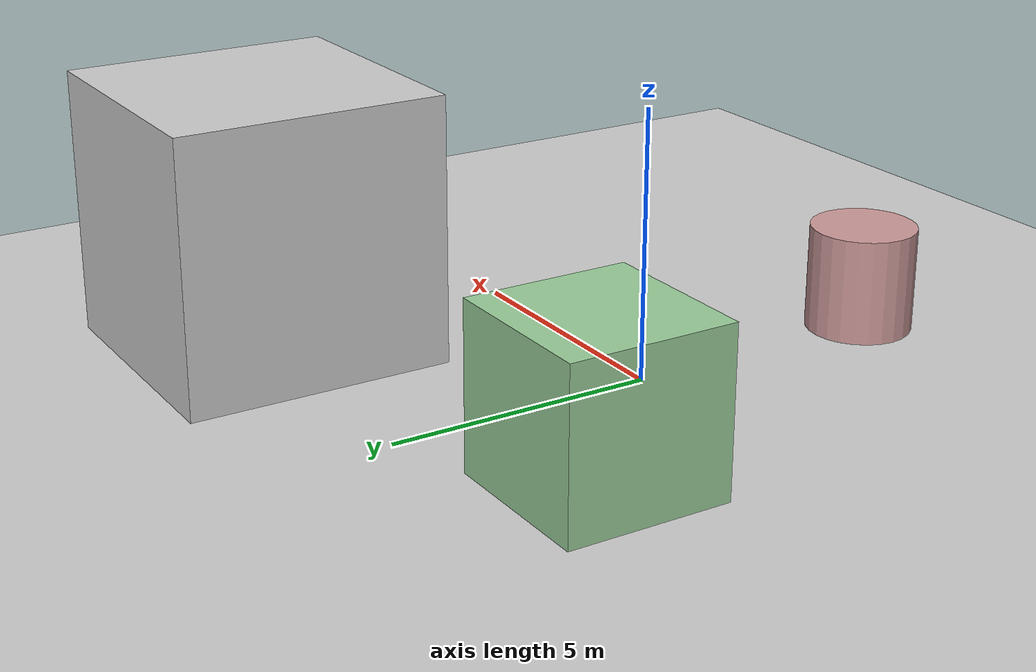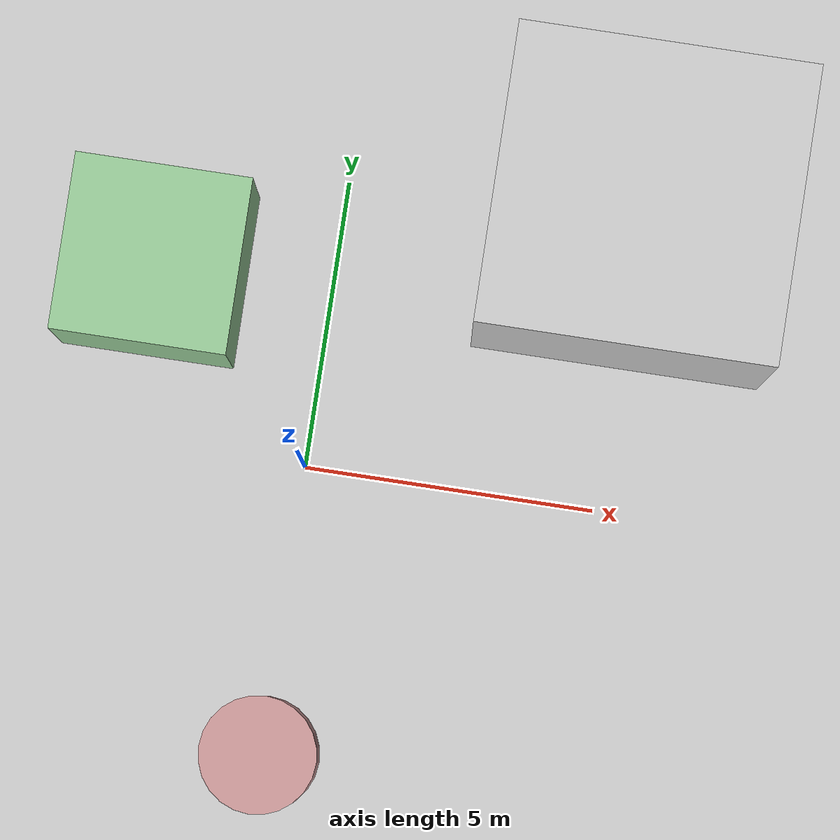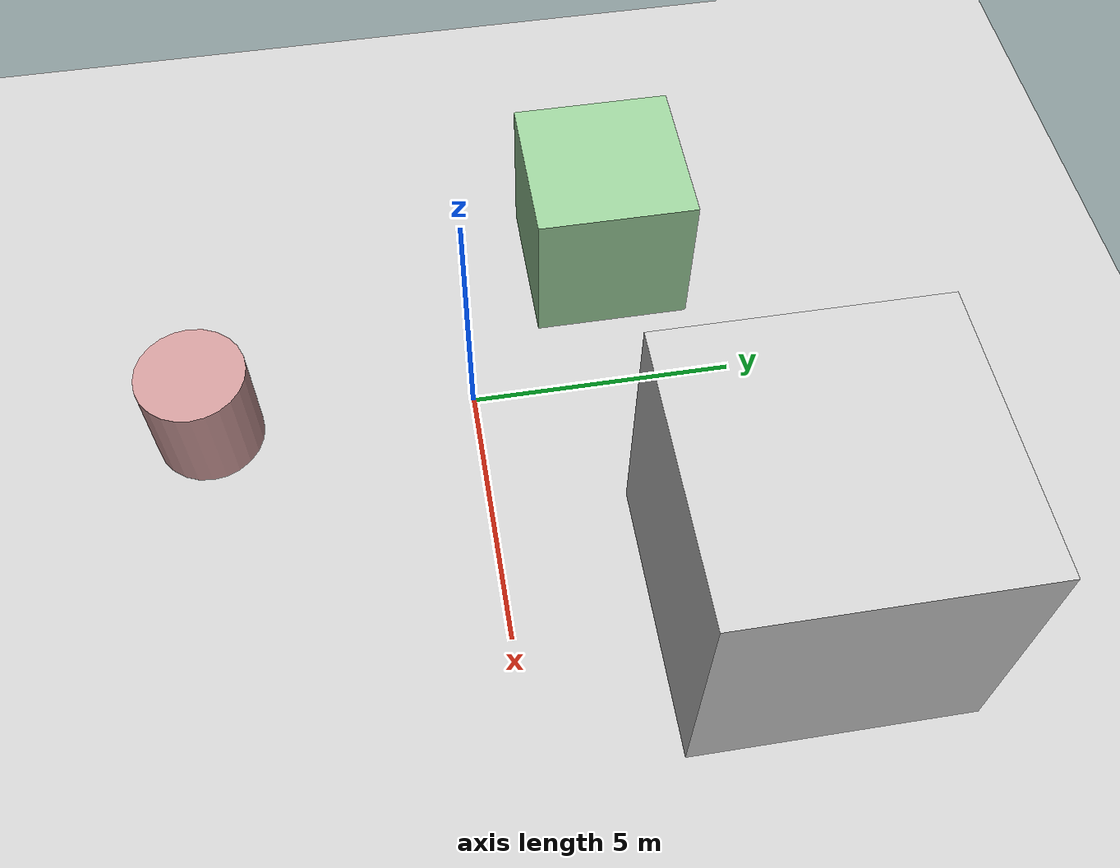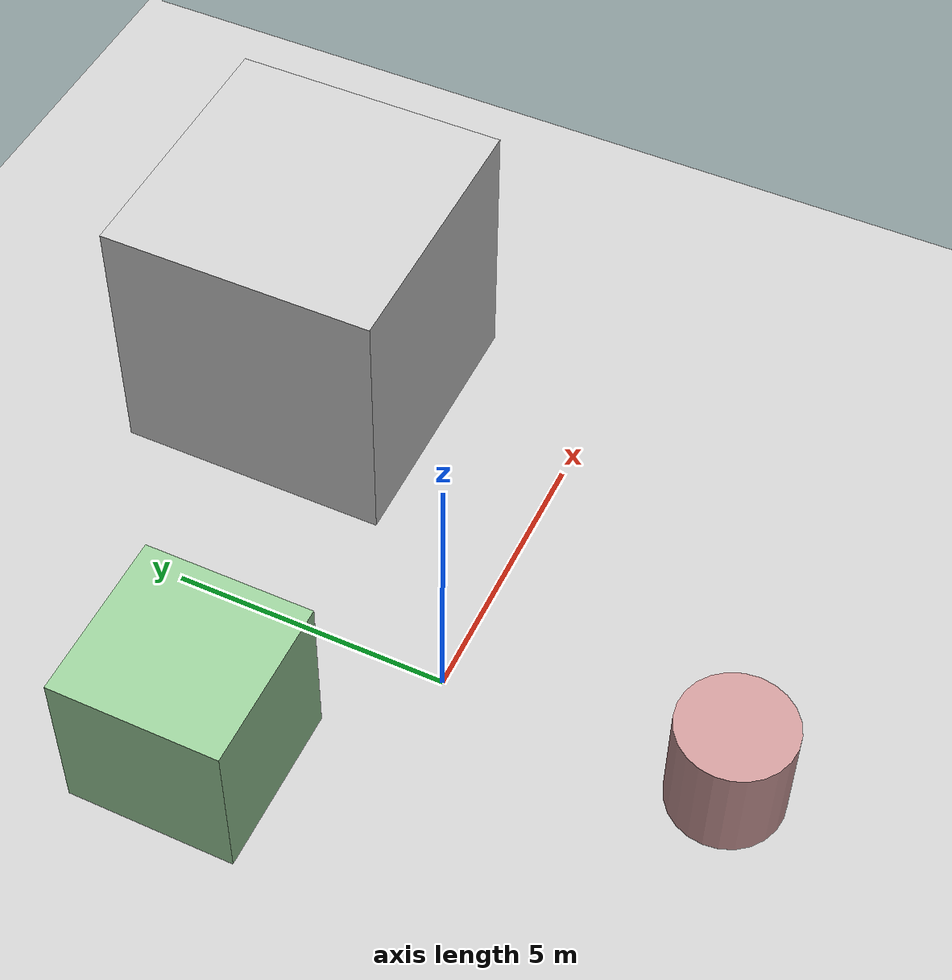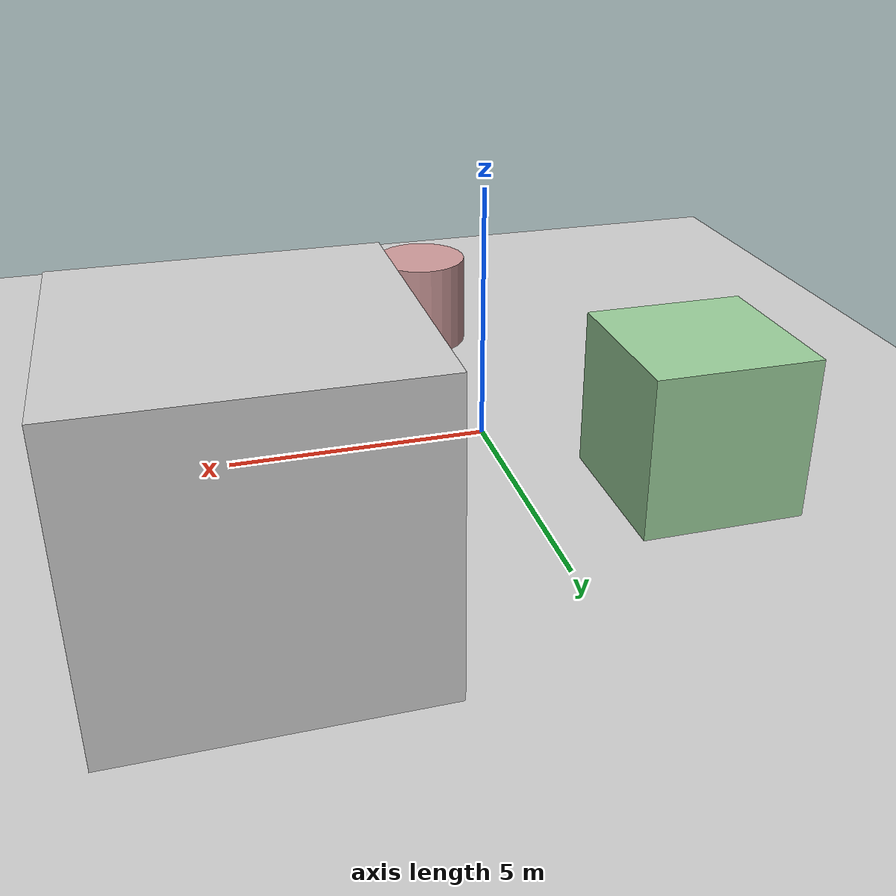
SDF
<?xml version="1.0" ?>
<sdf version="1.6">
  <world name="velodyne_world">

    <!-- Global light source -->
    <include>
      <uri>model://sun</uri>
    </include>

    <!-- Ground plane -->
    <include>
      <uri>model://ground_plane</uri>
    </include>

    <!-- Simple building for testing -->
    <model name="building_1">
      <pose>5 5 2.5 0 0 0</pose>
      <static>true</static>
      <link name="link">
        <collision name="collision">
          <geometry>
            <box>
              <size>5 5 5</size>
            </box>
          </geometry>
        </collision>
        <visual name="visual">
          <geometry>
            <box>
              <size>5 5 5</size>
            </box>
          </geometry>
          <material>
            <ambient>0.8 0.8 0.8 1</ambient>
            <diffuse>0.8 0.8 0.8 1</diffuse>
          </material>
        </visual>
      </link>
    </model>

    <!-- Another building -->
    <model name="building_2">
      <pose>-3 3 1.5 0 0 0</pose>
      <static>true</static>
      <link name="link">
        <collision name="collision">
          <geometry>
            <box>
              <size>3 3 3</size>
            </box>
          </geometry>
        </collision>
        <visual name="visual">
          <geometry>
            <box>
              <size>3 3 3</size>
            </box>
          </geometry>
          <material>
            <ambient>0.6 0.8 0.6 1</ambient>
            <diffuse>0.6 0.8 0.6 1</diffuse>
          </material>
        </visual>
      </link>
    </model>

    <!-- Cylindrical obstacle -->
    <model name="cylinder_obstacle">
      <pose>0 -5 1 0 0 0</pose>
      <static>true</static>
      <link name="link">
        <collision name="collision">
          <geometry>
            <cylinder>
              <radius>1</radius>
              <length>2</length>
            </cylinder>
          </geometry>
        </collision>
        <visual name="visual">
          <geometry>
            <cylinder>
              <radius>1</radius>
              <length>2</length>
            </cylinder>
          </geometry>
          <material>
            <ambient>0.8 0.6 0.6 1</ambient>
            <diffuse>0.8 0.6 0.6 1</diffuse>
          </material>
        </visual>
      </link>
    </model>

    <!-- Physics settings -->
    <physics name="default_physics" default="0" type="ode">
      <gravity>0 0 -9.8066</gravity>
      <ode>
        <solver>
          <type>quick</type>
          <iters>10</iters>
          <sor>1.3</sor>
          <use_dynamic_moi_rescaling>0</use_dynamic_moi_rescaling>
        </solver>
        <constraints>
          <cfm>0.00001</cfm>
          <erp>0.2</erp>
          <contact_max_correcting_vel>100.0</contact_max_correcting_vel>
          <contact_surface_layer>0.001</contact_surface_layer>
        </constraints>
      </ode>
      <max_step_size>0.004</max_step_size>
      <real_time_factor>1</real_time_factor>
      <real_time_update_rate>250</real_time_update_rate>
    </physics>

  </world>
</sdf>
